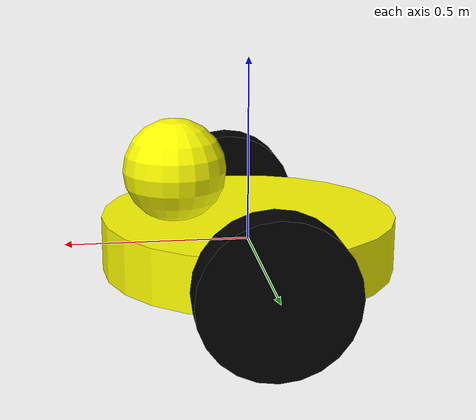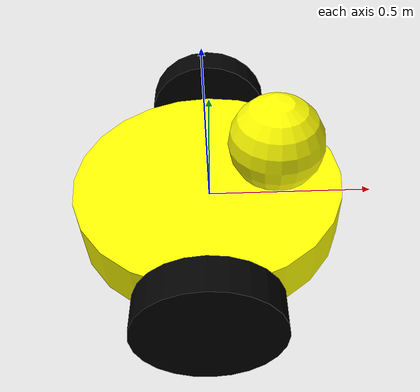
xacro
<?xml version="1.0"?>
<robot xmlns:xacro="http://www.ros.org/wiki/xacro" name="studentbot">

    <xacro:include filename="$(find machine_vision_bonus)/urdf/studentbot/xacro/chasis.xacro"/>
    <xacro:include filename="$(find machine_vision_bonus)/urdf/studentbot/xacro/wheels.xacro"/>
    <xacro:include filename="$(find machine_vision_bonus)/urdf/studentbot/xacro/materials.xacro"/>
    <xacro:include filename="$(find machine_vision_bonus)/urdf/studentbot/xacro/gazebo.xacro"/>

    <!-- Robot Base Footprint -->
    <link name="base_footprint"></link>

    <!-- Robot Chasis -->
    <xacro:chasis />

    <!-- Robot Wheels -->
    <xacro:wheel prefix="left" offset="0.45" />
    <xacro:wheel prefix="right" offset="-0.45" />

</robot>

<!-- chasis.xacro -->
<robot xmlns:xacro="http://www.ros.org/wiki/xacro">

    <xacro:property name="head_mass" value="0.2" />
    <xacro:property name="head_radius" value="0.14" />
    <xacro:property name="head_inertia_calc" value="${(2/5) * head_mass * (head_radius * head_radius)}" />

    <xacro:property name="chasis_mass" value="0.1" />
    <xacro:property name="chasis_radius" value="0.4" />
    <xacro:property name="chasis_height" value="0.15" />
    <xacro:property name="chasis_inertia_calc" value="${(1/12) * chasis_mass * ((3 * (chasis_radius * chasis_radius)) + (chasis_height * chasis_height))}" />
    <xacro:property name="chasis_inertia_calc_izz" value="${(1/2) * chasis_mass * (chasis_radius * chasis_radius)}" />

    <xacro:property name="passive_wheel_holder_mass" value="0.02" />
    <xacro:property name="passive_wheel_holder_radius" value="0.05" />
    <xacro:property name="passive_wheel_holder_height" value="0.15" />
    <xacro:property name="passive_wheel_holder_inertia_calc" value="${(1/12) * passive_wheel_holder_mass * ((3 * (passive_wheel_holder_radius * chasis_radius)) + (passive_wheel_holder_height * passive_wheel_holder_height))}" />
    <xacro:property name="passive_wheel_holder_inertia_calc_izz" value="${(1/2) * passive_wheel_holder_mass * (passive_wheel_holder_radius * chasis_radius)}" />

    <xacro:property name="passive_wheel_mass" value="0.02" />
    <xacro:property name="passive_wheel_radius" value="0.05" />
    <xacro:property name="passive_wheel_inertia_calc" value="${(2/5) * passive_wheel_mass * (passive_wheel_radius * passive_wheel_radius)}" />

    <xacro:macro name="chasis">
        <link name="chasis">

            <!-- Robot Head -->
            <visual>
                <origin xyz="0.2 0 0.2" rpy="0.0 0.0 0.0" />
                <geometry>
                    <sphere radius="${head_radius}" />
                </geometry>
                <material name="yellow" />
            </visual>
            <collision>
                <origin xyz="0.2 0 0.2" rpy="0.0 0.0 0.0" />
                <geometry>
                    <sphere radius="${head_radius}" />
                </geometry>
            </collision>
            <inertial>
                <mass value="${chasis_mass}"/>
                <inertia ixx="${head_inertia_calc}" ixy="0.0" ixz="0.0" iyy="${head_inertia_calc}" iyz="0.0" izz="${head_inertia_calc}"/>
            </inertial>

            <!-- Main Robot Body -->
            <visual>
                <origin xyz="0.0 0.0 0.0" rpy="0.0 0.0 0.0" />
                <geometry>
                    <cylinder radius="${chasis_radius}" length="${chasis_height}"/>
                </geometry>
                <material name="yellow" />
            </visual>
            <collision>
                <origin xyz="0.0 0.0 0.0" rpy="0.0 0.0 0.0" />
                <geometry>
                    <cylinder radius="${chasis_radius}" length="${chasis_height}"/>
                </geometry>
            </collision>
            <inertial>
                <mass value="${chasis_mass}"/>
                <inertia ixx="${chasis_inertia_calc}" ixy="0.0" ixz="0.0" iyy="${chasis_inertia_calc}" iyz="0.0" izz="${chasis_inertia_calc_izz}"/>
            </inertial>

            <!-- Passive Wheel Holder -->
            <visual>
                <origin xyz="0.2 0 -0.075" rpy="0 0 0" />
                <geometry>
                    <cylinder radius="${passive_wheel_holder_radius}" length="${passive_wheel_holder_height}"/>
                </geometry>
                <material name="yellow" />
            </visual>
            <collision>
                <origin xyz="0.2 0 -0.075" rpy="0 0 0" />
                <geometry>
                    <cylinder radius="${passive_wheel_holder_radius}" length="${passive_wheel_holder_height}"/>
                </geometry>
            </collision>
            <inertial>
                <mass value="${passive_wheel_holder_mass}"/>
                <inertia ixx="${passive_wheel_holder_inertia_calc}" ixy="0.0" ixz="0.0" iyy="${passive_wheel_holder_inertia_calc}" iyz="0.0" izz="${passive_wheel_holder_inertia_calc}"/>
            </inertial>

            <!-- Passive Wheel -->
            <visual>
                <origin xyz="0.2 0 -0.15" rpy="0 0 0" />
                <geometry>
                    <sphere radius="${passive_wheel_radius}" />
                </geometry>
                <material name="yellow" />
            </visual>
            <collision>
                <origin xyz="0.2 0 -0.15" rpy="0 0 0" />
                <geometry>
                    <sphere radius="${passive_wheel_radius}" />
                </geometry>
            </collision>
            <inertial>
                <mass value="${passive_wheel_mass}"/>
                <inertia ixx="${passive_wheel_inertia_calc}" ixy="0.0" ixz="0.0" iyy="${passive_wheel_inertia_calc}" iyz="0.0" izz="${passive_wheel_inertia_calc}"/>
            </inertial>

        </link>
        <joint name="joint_base_footprint__chasis" type="fixed">
            <origin xyz="0 0 0" rpy="0 0 0" />
            <parent link="base_footprint"/>
            <child link="chasis"/>
        </joint>
    </xacro:macro>

</robot>

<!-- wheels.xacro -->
<robot xmlns:xacro="http://www.ros.org/wiki/xacro">

    <xacro:property name="wheel_mass" value="0.015" />
    <xacro:property name="wheel_radius" value="0.2" />
    <xacro:property name="wheel_height" value="0.1" />
    <xacro:property name="wheel_inertia_calc" value="${(1/12) * wheel_mass * ((3 * (wheel_radius * wheel_radius)) + (wheel_height * wheel_height))}" />
    <xacro:property name="wheel_inertia_calc_izz" value="${(1/2) * wheel_mass * (wheel_radius * wheel_radius)}" />

    <xacro:macro name="wheel" params="prefix offset">
        <link name="${prefix}_wheel">
            <visual>
                <origin xyz="0.0 0.0 0.0" rpy="${pi/2} 0.0 0.0"/>
                <geometry>
                    <cylinder radius="${wheel_radius}" length="${wheel_height}"/>
                </geometry>
                <material name="black"/>
            </visual>
            <collision>
                <origin xyz="0.0 0.0 0.0" rpy="${pi/2} 0.0 0.0"/>
                <geometry>
                    <cylinder radius="${wheel_radius}" length="${wheel_height}"/>
                </geometry>
            </collision>
            <inertial>
                <mass value="${wheel_mass}"/>
                <inertia ixx="${wheel_inertia_calc}" ixy="0.0" ixz="0.0" iyy="${wheel_inertia_calc}" iyz="0.0" izz="${wheel_inertia_calc_izz}"/>
            </inertial>
        </link>
        <joint name="joint_${prefix}_wheel" type="continuous">
            <parent link="chasis"/>
            <child link="${prefix}_wheel"/>
            <origin xyz="0.0 ${offset} 0.0" rpy="0.0 0.0 0.0"/>
            <axis xyz="0.0 1 0.0"/>
        </joint>
    </xacro:macro>

</robot>

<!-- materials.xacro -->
<robot xmlns:xacro="http://www.ros.org/wiki/xacro">

    <material name="black">
        <color rgba="0 0 0 1"/>
    </material>

    <material name="yellow">
        <color rgba="1 1 0 1"/>
    </material>

</robot>
